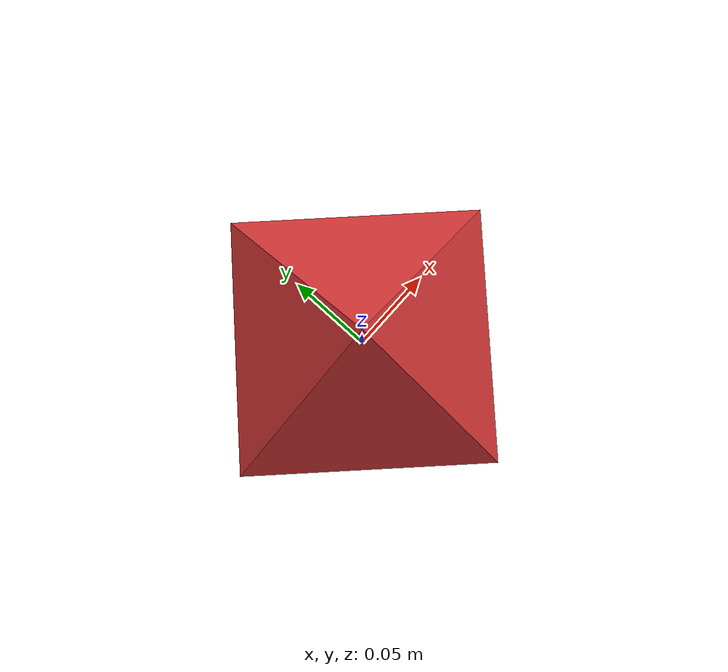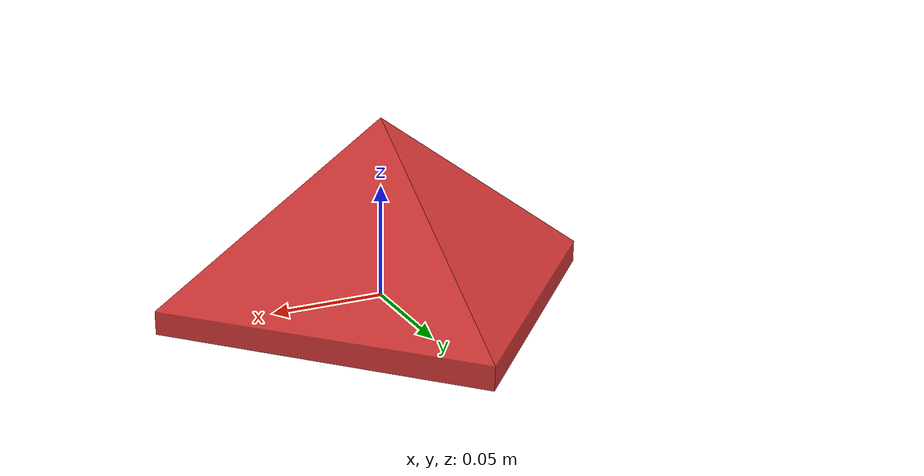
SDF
<?xml version="1.0"?>
<sdf version="1.7">
  <model name="hat_variant">
    <link name="hat_variant_link">
      <inertial>
        <mass>1.0</mass>
        <inertia>
          <ixx>0.033</ixx>
          <iyy>0.033</iyy>
          <izz>0.04</izz>
          <ixy>0.0</ixy>
          <ixz>0.0</ixz>
          <iyz>0.0</iyz>
        </inertia>
      </inertial>
      <visual name="hat_variant_visual">
        <geometry>
          <mesh>
            <uri>hat.obj</uri>
            <scale>0.1 0.1 0.1</scale>
          </mesh>
        </geometry>
        <material>
          <diffuse>0.8 0.2 0.2 1</diffuse>
          <ambient>0.3 0.1 0.1 1</ambient>
        </material>
      </visual>
    </link>
  </model>
</sdf>
